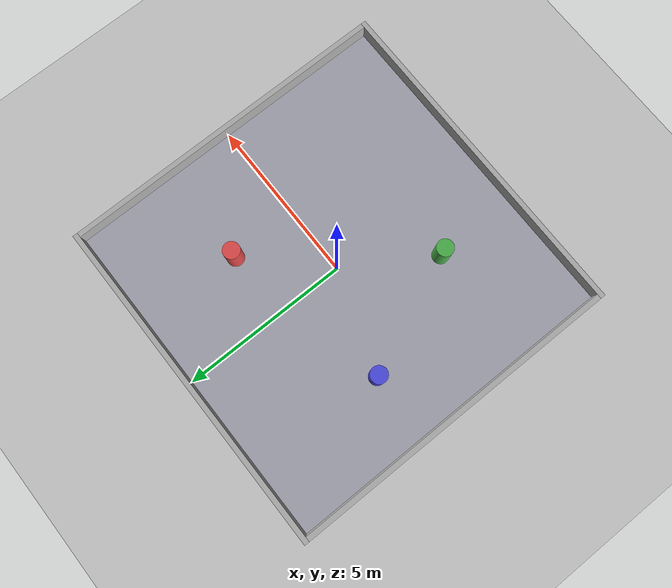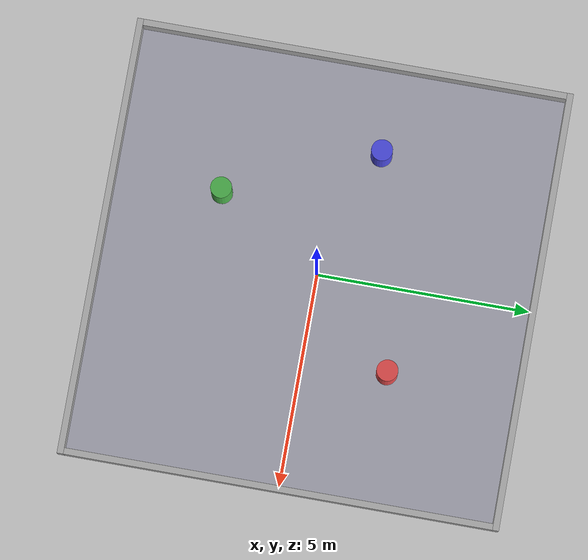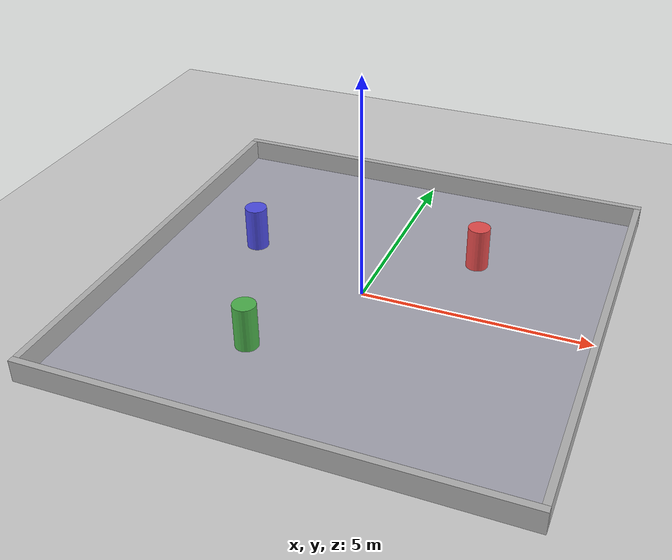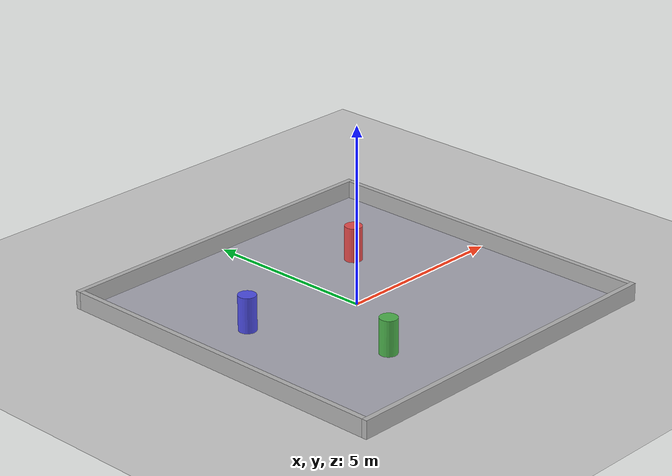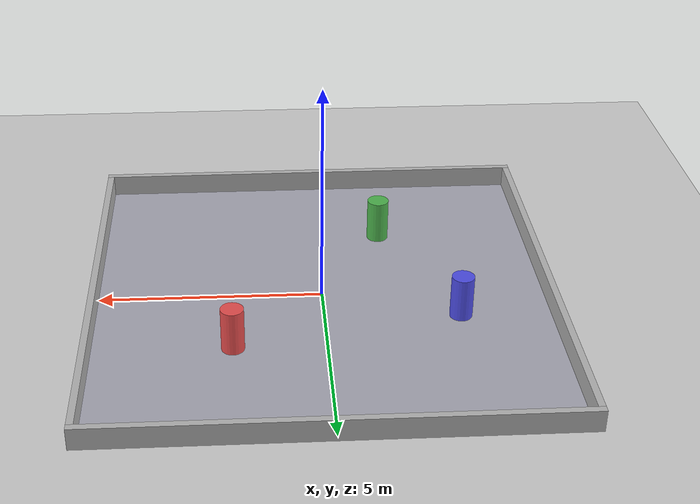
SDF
<?xml version="1.0" ?>
<sdf version="1.8">
  <world name="arena_world">

    <!-- Physics -->
    <physics name="1ms" type="ignored">
      <max_step_size>0.001</max_step_size>
      <real_time_factor>1.0</real_time_factor>
    </physics>

    <!-- Plugins required for Gazebo Fortress / Harmonic -->
    <plugin filename="gz-sim-physics-system" name="gz::sim::systems::Physics"/>
    <plugin filename="gz-sim-user-commands-system" name="gz::sim::systems::UserCommands"/>
    <plugin filename="gz-sim-scene-broadcaster-system" name="gz::sim::systems::SceneBroadcaster"/>
    <plugin filename="gz-sim-sensors-system" name="gz::sim::systems::Sensors">
      <render_engine>ogre2</render_engine>
    </plugin>
    <plugin filename="gz-sim-contact-system" name="gz::sim::systems::Contact"/>
    <plugin filename="gz-sim-imu-system" name="gz::sim::systems::Imu"/>

    <!-- Lighting -->
    <light type="directional" name="sun">
      <cast_shadows>true</cast_shadows>
      <pose>0 0 10 0 0 0</pose>
      <diffuse>0.8 0.8 0.8 1</diffuse>
      <specular>0.2 0.2 0.2 1</specular>
      <attenuation>
        <range>1000</range>
        <constant>0.9</constant>
        <linear>0.01</linear>
        <quadratic>0.001</quadratic>
      </attenuation>
      <direction>-0.5 0.1 -0.9</direction>
    </light>

    <!-- Ground Plane -->
    <model name="ground_plane">
      <static>true</static>
      <link name="link">
        <collision name="collision">
          <geometry>
            <plane>
              <normal>0 0 1</normal>
              <size>100 100</size>
            </plane>
          </geometry>
        </collision>
        <visual name="visual">
          <geometry>
            <plane>
              <normal>0 0 1</normal>
              <size>100 100</size>
            </plane>
          </geometry>
          <material>
            <ambient>0.8 0.8 0.8 1</ambient>
            <diffuse>0.8 0.8 0.8 1</diffuse>
            <specular>0.8 0.8 0.8 1</specular>
          </material>
        </visual>
      </link>
    </model>

    <!-- ==================== ARENA (10m x 10m with walls) ==================== -->

    <!-- Arena Floor (visual indicator, slightly different color from ground) -->
    <model name="arena_floor">
      <static>true</static>
      <pose>0 0 0.001 0 0 0</pose>
      <link name="link">
        <visual name="visual">
          <geometry>
            <box>
              <size>10.0 10.0 0.002</size>
            </box>
          </geometry>
          <material>
            <ambient>0.65 0.65 0.70 1</ambient>
            <diffuse>0.65 0.65 0.70 1</diffuse>
            <specular>0.3 0.3 0.3 1</specular>
          </material>
        </visual>
      </link>
    </model>

    <!-- Wall properties: height=0.5m, thickness=0.15m -->

    <!-- North Wall (positive Y) -->
    <model name="wall_north">
      <static>true</static>
      <pose>0 5.075 0.25 0 0 0</pose>
      <link name="link">
        <collision name="collision">
          <geometry>
            <box>
              <size>10.3 0.15 0.5</size>
            </box>
          </geometry>
        </collision>
        <visual name="visual">
          <geometry>
            <box>
              <size>10.3 0.15 0.5</size>
            </box>
          </geometry>
          <material>
            <ambient>0.5 0.5 0.5 1</ambient>
            <diffuse>0.7 0.7 0.7 1</diffuse>
          </material>
        </visual>
      </link>
    </model>

    <!-- South Wall (negative Y) -->
    <model name="wall_south">
      <static>true</static>
      <pose>0 -5.075 0.25 0 0 0</pose>
      <link name="link">
        <collision name="collision">
          <geometry>
            <box>
              <size>10.3 0.15 0.5</size>
            </box>
          </geometry>
        </collision>
        <visual name="visual">
          <geometry>
            <box>
              <size>10.3 0.15 0.5</size>
            </box>
          </geometry>
          <material>
            <ambient>0.5 0.5 0.5 1</ambient>
            <diffuse>0.7 0.7 0.7 1</diffuse>
          </material>
        </visual>
      </link>
    </model>

    <!-- East Wall (positive X) -->
    <model name="wall_east">
      <static>true</static>
      <pose>5.075 0 0.25 0 0 0</pose>
      <link name="link">
        <collision name="collision">
          <geometry>
            <box>
              <size>0.15 10.0 0.5</size>
            </box>
          </geometry>
        </collision>
        <visual name="visual">
          <geometry>
            <box>
              <size>0.15 10.0 0.5</size>
            </box>
          </geometry>
          <material>
            <ambient>0.5 0.5 0.5 1</ambient>
            <diffuse>0.7 0.7 0.7 1</diffuse>
          </material>
        </visual>
      </link>
    </model>

    <!-- West Wall (negative X) -->
    <model name="wall_west">
      <static>true</static>
      <pose>-5.075 0 0.25 0 0 0</pose>
      <link name="link">
        <collision name="collision">
          <geometry>
            <box>
              <size>0.15 10.0 0.5</size>
            </box>
          </geometry>
        </collision>
        <visual name="visual">
          <geometry>
            <box>
              <size>0.15 10.0 0.5</size>
            </box>
          </geometry>
          <material>
            <ambient>0.5 0.5 0.5 1</ambient>
            <diffuse>0.7 0.7 0.7 1</diffuse>
          </material>
        </visual>
      </link>
    </model>

    <!-- ==================== OBSTACLES (3 static cylinders, 0.5m diameter) ==================== -->

    <!-- Obstacle 1 -->
    <model name="obstacle_1">
      <static>true</static>
      <pose>2.0 2.0 0.5 0 0 0</pose>
      <link name="link">
        <collision name="collision">
          <geometry>
            <cylinder>
              <radius>0.25</radius>
              <length>1.0</length>
            </cylinder>
          </geometry>
        </collision>
        <visual name="visual">
          <geometry>
            <cylinder>
              <radius>0.25</radius>
              <length>1.0</length>
            </cylinder>
          </geometry>
          <material>
            <ambient>0.8 0.2 0.2 1</ambient>
            <diffuse>0.9 0.3 0.3 1</diffuse>
            <specular>0.5 0.5 0.5 1</specular>
          </material>
        </visual>
      </link>
    </model>

    <!-- Obstacle 2 -->
    <model name="obstacle_2">
      <static>true</static>
      <pose>-1.5 -2.5 0.5 0 0 0</pose>
      <link name="link">
        <collision name="collision">
          <geometry>
            <cylinder>
              <radius>0.25</radius>
              <length>1.0</length>
            </cylinder>
          </geometry>
        </collision>
        <visual name="visual">
          <geometry>
            <cylinder>
              <radius>0.25</radius>
              <length>1.0</length>
            </cylinder>
          </geometry>
          <material>
            <ambient>0.2 0.6 0.2 1</ambient>
            <diffuse>0.3 0.7 0.3 1</diffuse>
            <specular>0.5 0.5 0.5 1</specular>
          </material>
        </visual>
      </link>
    </model>

    <!-- Obstacle 3 -->
    <model name="obstacle_3">
      <static>true</static>
      <pose>-3.0 1.0 0.5 0 0 0</pose>
      <link name="link">
        <collision name="collision">
          <geometry>
            <cylinder>
              <radius>0.25</radius>
              <length>1.0</length>
            </cylinder>
          </geometry>
        </collision>
        <visual name="visual">
          <geometry>
            <cylinder>
              <radius>0.25</radius>
              <length>1.0</length>
            </cylinder>
          </geometry>
          <material>
            <ambient>0.2 0.2 0.8 1</ambient>
            <diffuse>0.3 0.3 0.9 1</diffuse>
            <specular>0.5 0.5 0.5 1</specular>
          </material>
        </visual>
      </link>
    </model>

  </world>
</sdf>
